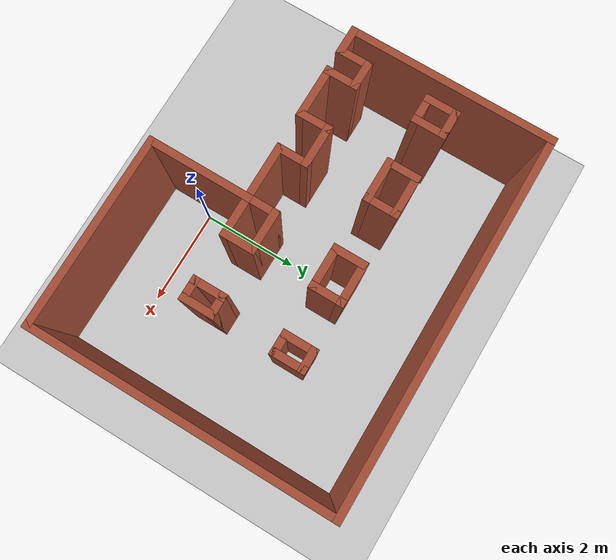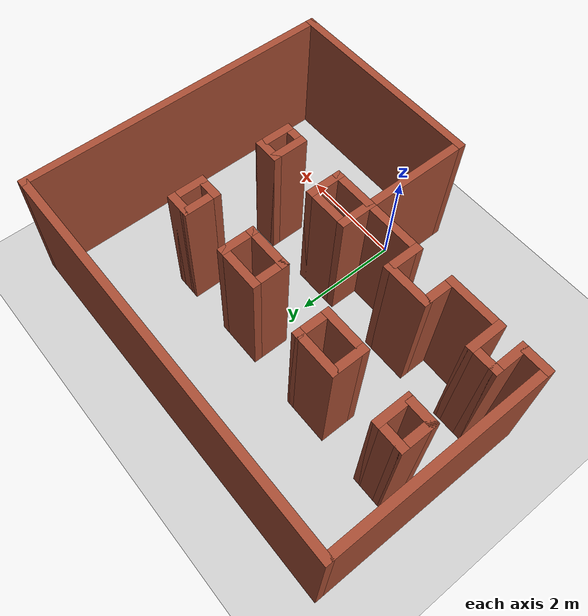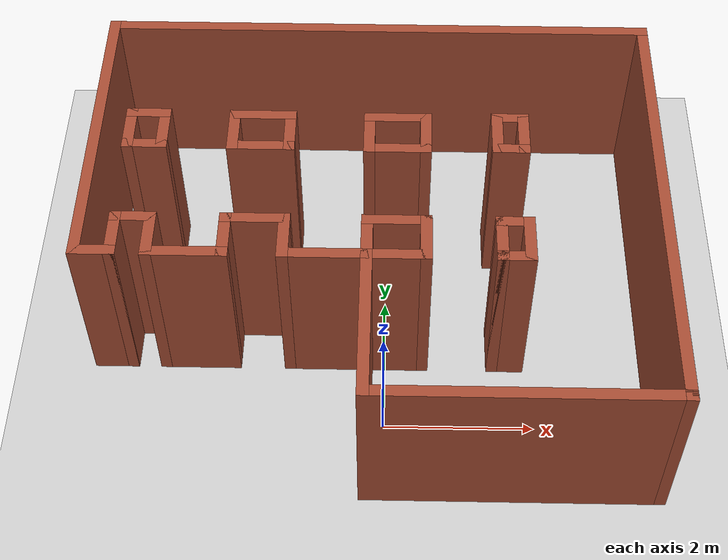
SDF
<sdf version="1.7">
 <world name="default">
  <light name="sun" type="directional">
   <pose>0 0 10 0 -0 0</pose>
   <diffuse>0.8 0.8 0.8 1</diffuse>
   <specular>0.2 0.2 0.2 1</specular>
   <attenuation>
    <range>1000</range>
    <constant>0.9</constant>
    <linear>0.01</linear>
    <quadratic>0.001</quadratic>
   </attenuation>
   <direction>-0.5 0.1 -0.9</direction>
   <spot><inner_angle>0</inner_angle><outer_angle>0</outer_angle><falloff>0</falloff></spot>
  </light>
  <model name="ground_plane">
   <static>1</static>
   <link name="link">
    <collision name="collision">
     <geometry><plane><normal>0 0 1</normal><size>100 100</size></plane></geometry>
     <surface>
      <contact><collide_bitmask>65535</collide_bitmask></contact>
      <friction><ode><mu>100</mu><mu2>50</mu2></ode></friction>
     </surface>
    </collision>
    <visual name="visual">
     <cast_shadows>0</cast_shadows>
     <geometry><plane><normal>0 0 1</normal><size>100 100</size></plane></geometry>
     <material>
      <script><uri>file://media/materials/scripts/gazebo.material</uri><name>Gazebo/Grey</name></script>
     </material>
    </visual>
   </link>
  </model>
  <gravity>0 0 -9.8</gravity>
  <magnetic_field>6e-06 2.3e-05 -4.2e-05</magnetic_field>
  <atmosphere type="adiabatic"/>
  <physics type="ode">
   <max_step_size>0.001</max_step_size>
   <real_time_factor>1</real_time_factor>
   <real_time_update_rate>1000</real_time_update_rate>
  </physics>
  <scene><ambient>0.4 0.4 0.4 1</ambient><background>0.7 0.7 0.7 1</background><shadows>1</shadows></scene>
  <spherical_coordinates>
   <surface_model>EARTH_WGS84</surface_model>
   <latitude_deg>0</latitude_deg>
   <longitude_deg>0</longitude_deg>
   <elevation>0</elevation>
   <heading_deg>0</heading_deg>
  </spherical_coordinates>
  <model name="real_lab">
   <pose>-0.156119 2.00596 0 0 -0 0</pose>
   <link name="Wall_1">
    <collision name="Wall_1_Collision">
     <geometry><box><size>6.2 0.15 2.5</size></box></geometry>
     <pose>0 0 1.25 0 -0 0</pose>
    </collision>
    <visual name="Wall_1_Visual">
     <pose>0 0 1.25 0 -0 0</pose>
     <geometry><box><size>6.2 0.15 2.5</size></box></geometry>
     <material>
      <script><uri>file://media/materials/scripts/gazebo.material</uri><name>Gazebo/Bricks</name></script>
      <ambient>1 1 1 1</ambient>
     </material>
     <meta><layer>0</layer></meta>
    </visual>
    <pose>3.725 0 0 0 -0 1.5708</pose>
   </link>
   <link name="Wall_100">
    <collision name="Wall_100_Collision">
     <geometry><box><size>7.6 0.15 2.5</size></box></geometry>
     <pose>0 0 1.25 0 -0 0</pose>
    </collision>
    <visual name="Wall_100_Visual">
     <pose>0 0 1.25 0 -0 0</pose>
     <geometry><box><size>7.6 0.15 2.5</size></box></geometry>
     <material>
      <script><uri>file://media/materials/scripts/gazebo.material</uri><name>Gazebo/Bricks</name></script>
      <ambient>1 1 1 1</ambient>
     </material>
     <meta><layer>0</layer></meta>
    </visual>
    <pose>-0 3.025 0 0 -0 3.14159</pose>
   </link>
   <link name="Wall_102">
    <collision name="Wall_102_Collision">
     <geometry><box><size>4.2 0.15 2.5</size></box></geometry>
     <pose>0 0 1.25 0 -0 0</pose>
    </collision>
    <visual name="Wall_102_Visual">
     <pose>0 0 1.25 0 -0 0</pose>
     <geometry><box><size>4.2 0.15 2.5</size></box></geometry>
     <material>
      <script><uri>file://media/materials/scripts/gazebo.material</uri><name>Gazebo/Bricks</name></script>
      <ambient>1 1 1 1</ambient>
     </material>
     <meta><layer>0</layer></meta>
    </visual>
    <pose>-3.725 1 0 0 -0 -1.5708</pose>
   </link>
   <link name="Wall_104">
    <collision name="Wall_104_Collision">
     <geometry><box><size>0.6 0.15 2.5</size></box></geometry>
     <pose>0 0 1.25 0 -0 0</pose>
    </collision>
    <visual name="Wall_104_Visual">
     <pose>0 0 1.25 0 -0 0</pose>
     <geometry><box><size>0.6 0.15 2.5</size></box></geometry>
     <material>
      <script><uri>file://media/materials/scripts/gazebo.material</uri><name>Gazebo/Bricks</name></script>
      <ambient>1 1 1 1</ambient>
     </material>
     <meta><layer>0</layer></meta>
    </visual>
    <pose>-3.5 -1.025 0 0 -0 0</pose>
   </link>
   <link name="Wall_106">
    <collision name="Wall_106_Collision">
     <geometry><box><size>0.7 0.15 2.5</size></box></geometry>
     <pose>0 0 1.25 0 -0 0</pose>
    </collision>
    <visual name="Wall_106_Visual">
     <pose>0 0 1.25 0 -0 0</pose>
     <geometry><box><size>0.7 0.15 2.5</size></box></geometry>
     <material>
      <script><uri>file://media/materials/scripts/gazebo.material</uri><name>Gazebo/Bricks</name></script>
      <ambient>1 1 1 1</ambient>
     </material>
     <meta><layer>0</layer></meta>
    </visual>
    <pose>-3.275 -0.75 0 0 -0 1.5708</pose>
   </link>
   <link name="Wall_108">
    <collision name="Wall_108_Collision">
     <geometry><box><size>0.6 0.15 2.5</size></box></geometry>
     <pose>0 0 1.25 0 -0 0</pose>
    </collision>
    <visual name="Wall_108_Visual">
     <pose>0 0 1.25 0 -0 0</pose>
     <geometry><box><size>0.6 0.15 2.5</size></box></geometry>
     <material>
      <script><uri>file://media/materials/scripts/gazebo.material</uri><name>Gazebo/Bricks</name></script>
      <ambient>1 1 1 1</ambient>
     </material>
     <meta><layer>0</layer></meta>
    </visual>
    <pose>-3.05 -0.475 0 0 -0 0</pose>
   </link>
   <link name="Wall_110">
    <collision name="Wall_110_Collision">
     <geometry><box><size>0.7 0.15 2.5</size></box></geometry>
     <pose>0 0 1.25 0 -0 0</pose>
    </collision>
    <visual name="Wall_110_Visual">
     <pose>0 0 1.25 0 -0 0</pose>
     <geometry><box><size>0.7 0.15 2.5</size></box></geometry>
     <material>
      <script><uri>file://media/materials/scripts/gazebo.material</uri><name>Gazebo/Bricks</name></script>
      <ambient>1 1 1 1</ambient>
     </material>
     <meta><layer>0</layer></meta>
    </visual>
    <pose>-2.825 -0.75 0 0 -0 -1.5708</pose>
   </link>
   <link name="Wall_120">
    <collision name="Wall_120_Collision">
     <geometry><box><size>0.7 0.15 2.5</size></box></geometry>
     <pose>0 0 1.25 0 -0 0</pose>
    </collision>
    <visual name="Wall_120_Visual">
     <pose>0 0 1.25 0 -0 0</pose>
     <geometry><box><size>0.7 0.15 2.5</size></box></geometry>
     <material>
      <script><uri>file://media/materials/scripts/gazebo.material</uri><name>Gazebo/Bricks</name></script>
      <ambient>1 1 1 1</ambient>
     </material>
     <meta><layer>0</layer></meta>
    </visual>
    <pose>-1.13679 1.03821 0 0 -0 -1.5708</pose>
   </link>
   <link name="Wall_122">
    <collision name="Wall_122_Collision">
     <geometry><box><size>0.9 0.15 2.5</size></box></geometry>
     <pose>0 0 1.25 0 -0 0</pose>
    </collision>
    <visual name="Wall_122_Visual">
     <pose>0 0 1.25 0 -0 0</pose>
     <geometry><box><size>0.9 0.15 2.5</size></box></geometry>
     <material>
      <script><uri>file://media/materials/scripts/gazebo.material</uri><name>Gazebo/Bricks</name></script>
      <ambient>1 1 1 1</ambient>
     </material>
     <meta><layer>0</layer></meta>
    </visual>
    <pose>-1.51179 0.763207 0 0 -0 0</pose>
   </link>
   <link name="Wall_151">
    <collision name="Wall_151_Collision">
     <geometry><box><size>0.7 0.15 2.5</size></box></geometry>
     <pose>0 0 1.25 0 -0 0</pose>
    </collision>
    <visual name="Wall_151_Visual">
     <pose>0 0 1.25 0 -0 0</pose>
     <geometry><box><size>0.7 0.15 2.5</size></box></geometry>
     <material>
      <script><uri>file://media/materials/scripts/gazebo.material</uri><name>Gazebo/Bricks</name></script>
      <ambient>1 1 1 1</ambient>
     </material>
     <meta><layer>0</layer></meta>
    </visual>
    <pose>1.62217 1.03821 0 0 -0 1.5708</pose>
   </link>
   <link name="Wall_154">
    <collision name="Wall_154_Collision">
     <geometry><box><size>0.7 0.15 2.5</size></box></geometry>
     <pose>0 0 1.25 0 -0 0</pose>
    </collision>
    <visual name="Wall_154_Visual">
     <pose>0 0 1.25 0 -0 0</pose>
     <geometry><box><size>0.7 0.15 2.5</size></box></geometry>
     <material>
      <script><uri>file://media/materials/scripts/gazebo.material</uri><name>Gazebo/Bricks</name></script>
      <ambient>1 1 1 1</ambient>
     </material>
     <meta><layer>0</layer></meta>
    </visual>
    <pose>1.97218 1.03821 0 0 -0 -1.5708</pose>
   </link>
   <link name="Wall_159">
    <collision name="Wall_159_Collision">
     <geometry><box><size>0.7 0.15 2.5</size></box></geometry>
     <pose>0 0 1.25 0 -0 0</pose>
    </collision>
    <visual name="Wall_159_Visual">
     <pose>0 0 1.25 0 -0 0</pose>
     <geometry><box><size>0.7 0.15 2.5</size></box></geometry>
     <material>
      <script><uri>file://media/materials/scripts/gazebo.material</uri><name>Gazebo/Bricks</name></script>
      <ambient>1 1 1 1</ambient>
     </material>
     <meta><layer>0</layer></meta>
    </visual>
    <pose>0.672175 1.02027 0 0 -0 1.5708</pose>
   </link>
   <link name="Wall_161">
    <collision name="Wall_161_Collision">
     <geometry><box><size>0.9 0.15 2.5</size></box></geometry>
     <pose>0 0 1.25 0 -0 0</pose>
    </collision>
    <visual name="Wall_161_Visual">
     <pose>0 0 1.25 0 -0 0</pose>
     <geometry><box><size>0.9 0.15 2.5</size></box></geometry>
     <material>
      <script><uri>file://media/materials/scripts/gazebo.material</uri><name>Gazebo/Bricks</name></script>
      <ambient>1 1 1 1</ambient>
     </material>
     <meta><layer>0</layer></meta>
    </visual>
    <pose>0.297175 1.29527 0 0 -0 3.14159</pose>
   </link>
   <link name="Wall_163">
    <collision name="Wall_163_Collision">
     <geometry><box><size>0.7 0.15 2.5</size></box></geometry>
     <pose>0 0 1.25 0 -0 0</pose>
    </collision>
    <visual name="Wall_163_Visual">
     <pose>0 0 1.25 0 -0 0</pose>
     <geometry><box><size>0.7 0.15 2.5</size></box></geometry>
     <material>
      <script><uri>file://media/materials/scripts/gazebo.material</uri><name>Gazebo/Bricks</name></script>
      <ambient>1 1 1 1</ambient>
     </material>
     <meta><layer>0</layer></meta>
    </visual>
    <pose>-0.077825 1.02027 0 0 -0 -1.5708</pose>
   </link>
   <link name="Wall_165">
    <collision name="Wall_165_Collision">
     <geometry><box><size>0.9 0.15 2.5</size></box></geometry>
     <pose>0 0 1.25 0 -0 0</pose>
    </collision>
    <visual name="Wall_165_Visual">
     <pose>0 0 1.25 0 -0 0</pose>
     <geometry><box><size>0.9 0.15 2.5</size></box></geometry>
     <material>
      <script><uri>file://media/materials/scripts/gazebo.material</uri><name>Gazebo/Bricks</name></script>
      <ambient>1 1 1 1</ambient>
     </material>
     <meta><layer>0</layer></meta>
    </visual>
    <pose>0.297175 0.745272 0 0 -0 0</pose>
   </link>
   <link name="Wall_171">
    <collision name="Wall_171_Collision">
     <geometry><box><size>0.5 0.15 2.5</size></box></geometry>
     <pose>0 0 1.25 0 -0 0</pose>
    </collision>
    <visual name="Wall_171_Visual">
     <pose>0 0 1.25 0 -0 0</pose>
     <geometry><box><size>0.5 0.15 2.5</size></box></geometry>
     <material>
      <script><uri>file://media/materials/scripts/gazebo.material</uri><name>Gazebo/Bricks</name></script>
      <ambient>1 1 1 1</ambient>
     </material>
     <meta><layer>0</layer></meta>
    </visual>
    <pose>1.79717 1.31321 0 0 -0 0</pose>
   </link>
   <link name="Wall_173">
    <collision name="Wall_173_Collision">
     <geometry><box><size>0.5 0.15 2.5</size></box></geometry>
     <pose>0 0 1.25 0 -0 0</pose>
    </collision>
    <visual name="Wall_173_Visual">
     <pose>0 0 1.25 0 -0 0</pose>
     <geometry><box><size>0.5 0.15 2.5</size></box></geometry>
     <material>
      <script><uri>file://media/materials/scripts/gazebo.material</uri><name>Gazebo/Bricks</name></script>
      <ambient>1 1 1 1</ambient>
     </material>
     <meta><layer>0</layer></meta>
    </visual>
    <pose>1.79717 0.763207 0 0 -0 0</pose>
   </link>
   <link name="Wall_175">
    <collision name="Wall_175_Collision">
     <geometry><box><size>0.7 0.15 2.5</size></box></geometry>
     <pose>0 0 1.25 0 -0 0</pose>
    </collision>
    <visual name="Wall_175_Visual">
     <pose>0 0 1.25 0 -0 0</pose>
     <geometry><box><size>0.7 0.15 2.5</size></box></geometry>
     <material>
      <script><uri>file://media/materials/scripts/gazebo.material</uri><name>Gazebo/Bricks</name></script>
      <ambient>1 1 1 1</ambient>
     </material>
     <meta><layer>0</layer></meta>
    </visual>
    <pose>1.625 -0.75 0 0 -0 -1.5708</pose>
   </link>
   <link name="Wall_179">
    <collision name="Wall_179_Collision">
     <geometry><box><size>0.5 0.15 2.5</size></box></geometry>
     <pose>0 0 1.25 0 -0 0</pose>
    </collision>
    <visual name="Wall_179_Visual">
     <pose>0 0 1.25 0 -0 0</pose>
     <geometry><box><size>0.5 0.15 2.5</size></box></geometry>
     <material>
      <script><uri>file://media/materials/scripts/gazebo.material</uri><name>Gazebo/Bricks</name></script>
      <ambient>1 1 1 1</ambient>
     </material>
     <meta><layer>0</layer></meta>
    </visual>
    <pose>1.8 -1.025 0 0 -0 0</pose>
   </link>
   <link name="Wall_180">
    <collision name="Wall_180_Collision">
     <geometry><box><size>0.7 0.15 2.5</size></box></geometry>
     <pose>0 0 1.25 0 -0 0</pose>
    </collision>
    <visual name="Wall_180_Visual">
     <pose>0 0 1.25 0 -0 0</pose>
     <geometry><box><size>0.7 0.15 2.5</size></box></geometry>
     <material>
      <script><uri>file://media/materials/scripts/gazebo.material</uri><name>Gazebo/Bricks</name></script>
      <ambient>1 1 1 1</ambient>
     </material>
     <meta><layer>0</layer></meta>
    </visual>
    <pose>1.975 -0.75 0 0 -0 1.5708</pose>
   </link>
   <link name="Wall_182">
    <collision name="Wall_182_Collision">
     <geometry><box><size>0.5 0.15 2.5</size></box></geometry>
     <pose>0 0 1.25 0 -0 0</pose>
    </collision>
    <visual name="Wall_182_Visual">
     <pose>0 0 1.25 0 -0 0</pose>
     <geometry><box><size>0.5 0.15 2.5</size></box></geometry>
     <material>
      <script><uri>file://media/materials/scripts/gazebo.material</uri><name>Gazebo/Bricks</name></script>
      <ambient>1 1 1 1</ambient>
     </material>
     <meta><layer>0</layer></meta>
    </visual>
    <pose>1.8 -0.475 0 0 -0 0</pose>
   </link>
   <link name="Wall_31">
    <collision name="Wall_31_Collision">
     <geometry><box><size>3.95 0.15 2.5</size></box></geometry>
     <pose>0 0 1.25 0 -0 0</pose>
    </collision>
    <visual name="Wall_31_Visual">
     <pose>0 0 1.25 0 -0 0</pose>
     <geometry><box><size>3.95 0.15 2.5</size></box></geometry>
     <material>
      <script><uri>file://media/materials/scripts/gazebo.material</uri><name>Gazebo/Bricks</name></script>
      <ambient>1 1 1 1</ambient>
     </material>
     <meta><layer>0</layer></meta>
    </visual>
    <pose>1.825 -3.025 0 0 -0 -3.14159</pose>
   </link>
   <link name="Wall_35">
    <collision name="Wall_35_Collision">
     <geometry><box><size>0.9 0.15 2.5</size></box></geometry>
     <pose>0 0 1.25 0 -0 0</pose>
    </collision>
    <visual name="Wall_35_Visual">
     <pose>0 0 1.25 0 -0 0</pose>
     <geometry><box><size>0.9 0.15 2.5</size></box></geometry>
     <material>
      <script><uri>file://media/materials/scripts/gazebo.material</uri><name>Gazebo/Bricks</name></script>
      <ambient>1 1 1 1</ambient>
     </material>
     <meta><layer>0</layer></meta>
    </visual>
    <pose>0.3 -0.475 0 0 -0 0</pose>
   </link>
   <link name="Wall_37">
    <collision name="Wall_37_Collision">
     <geometry><box><size>0.7 0.15 2.5</size></box></geometry>
     <pose>0 0 1.25 0 -0 0</pose>
    </collision>
    <visual name="Wall_37_Visual">
     <pose>0 0 1.25 0 -0 0</pose>
     <geometry><box><size>0.7 0.15 2.5</size></box></geometry>
     <material>
      <script><uri>file://media/materials/scripts/gazebo.material</uri><name>Gazebo/Bricks</name></script>
      <ambient>1 1 1 1</ambient>
     </material>
     <meta><layer>0</layer></meta>
    </visual>
    <pose>0.675 -0.75 0 0 -0 -1.5708</pose>
   </link>
   <link name="Wall_62">
    <collision name="Wall_62_Collision">
     <geometry><box><size>0.7 0.15 2.5</size></box></geometry>
     <pose>0 0 1.25 0 -0 0</pose>
    </collision>
    <visual name="Wall_62_Visual">
     <pose>0 0 1.25 0 -0 0</pose>
     <geometry><box><size>0.7 0.15 2.5</size></box></geometry>
     <material>
      <script><uri>file://media/materials/scripts/gazebo.material</uri><name>Gazebo/Bricks</name></script>
      <ambient>1 1 1 1</ambient>
     </material>
     <meta><layer>0</layer></meta>
    </visual>
    <pose>-3.275 1.05 0 0 -0 1.5708</pose>
   </link>
   <link name="Wall_64">
    <collision name="Wall_64_Collision">
     <geometry><box><size>0.6 0.15 2.5</size></box></geometry>
     <pose>0 0 1.25 0 -0 0</pose>
    </collision>
    <visual name="Wall_64_Visual">
     <pose>0 0 1.25 0 -0 0</pose>
     <geometry><box><size>0.6 0.15 2.5</size></box></geometry>
     <material>
      <script><uri>file://media/materials/scripts/gazebo.material</uri><name>Gazebo/Bricks</name></script>
      <ambient>1 1 1 1</ambient>
     </material>
     <meta><layer>0</layer></meta>
    </visual>
    <pose>-3.05 1.325 0 0 -0 0</pose>
   </link>
   <link name="Wall_66">
    <collision name="Wall_66_Collision">
     <geometry><box><size>0.7 0.15 2.5</size></box></geometry>
     <pose>0 0 1.25 0 -0 0</pose>
    </collision>
    <visual name="Wall_66_Visual">
     <pose>0 0 1.25 0 -0 0</pose>
     <geometry><box><size>0.7 0.15 2.5</size></box></geometry>
     <material>
      <script><uri>file://media/materials/scripts/gazebo.material</uri><name>Gazebo/Bricks</name></script>
      <ambient>1 1 1 1</ambient>
     </material>
     <meta><layer>0</layer></meta>
    </visual>
    <pose>-2.825 1.05 0 0 -0 -1.5708</pose>
   </link>
   <link name="Wall_68">
    <collision name="Wall_68_Collision">
     <geometry><box><size>0.6 0.15 2.5</size></box></geometry>
     <pose>0 0 1.25 0 -0 0</pose>
    </collision>
    <visual name="Wall_68_Visual">
     <pose>0 0 1.25 0 -0 0</pose>
     <geometry><box><size>0.6 0.15 2.5</size></box></geometry>
     <material>
      <script><uri>file://media/materials/scripts/gazebo.material</uri><name>Gazebo/Bricks</name></script>
      <ambient>1 1 1 1</ambient>
     </material>
     <meta><layer>0</layer></meta>
    </visual>
    <pose>-3.05 0.775 0 0 -0 3.14159</pose>
   </link>
   <link name="Wall_72">
    <collision name="Wall_72_Collision">
     <geometry><box><size>0.7 0.15 2.5</size></box></geometry>
     <pose>0 0 1.25 0 -0 0</pose>
    </collision>
    <visual name="Wall_72_Visual">
     <pose>0 0 1.25 0 -0 0</pose>
     <geometry><box><size>0.7 0.15 2.5</size></box></geometry>
     <material>
      <script><uri>file://media/materials/scripts/gazebo.material</uri><name>Gazebo/Bricks</name></script>
      <ambient>1 1 1 1</ambient>
     </material>
     <meta><layer>0</layer></meta>
    </visual>
    <pose>-1.88679 1.03821 0 0 -0 1.5708</pose>
   </link>
   <link name="Wall_74">
    <collision name="Wall_74_Collision">
     <geometry><box><size>0.9 0.15 2.5</size></box></geometry>
     <pose>0 0 1.25 0 -0 0</pose>
    </collision>
    <visual name="Wall_74_Visual">
     <pose>0 0 1.25 0 -0 0</pose>
     <geometry><box><size>0.9 0.15 2.5</size></box></geometry>
     <material>
      <script><uri>file://media/materials/scripts/gazebo.material</uri><name>Gazebo/Bricks</name></script>
      <ambient>1 1 1 1</ambient>
     </material>
     <meta><layer>0</layer></meta>
    </visual>
    <pose>-1.51179 1.31321 0 0 -0 0</pose>
   </link>
   <link name="Wall_78">
    <collision name="Wall_78_Collision">
     <geometry><box><size>2.15 0.15 2.5</size></box></geometry>
     <pose>0 0 1.25 0 -0 0</pose>
    </collision>
    <visual name="Wall_78_Visual">
     <pose>0 0 1.25 0 -0 0</pose>
     <geometry><box><size>2.15 0.15 2.5</size></box></geometry>
     <material>
      <script><uri>file://media/materials/scripts/gazebo.material</uri><name>Gazebo/Bricks</name></script>
      <ambient>1 1 1 1</ambient>
     </material>
     <meta><layer>0</layer></meta>
    </visual>
    <pose>-0.075 -2.025 0 0 -0 1.5708</pose>
   </link>
   <link name="Wall_80">
    <collision name="Wall_80_Collision">
     <geometry><box><size>0.9 0.15 2.5</size></box></geometry>
     <pose>0 0 1.25 0 -0 0</pose>
    </collision>
    <visual name="Wall_80_Visual">
     <pose>0 0 1.25 0 -0 0</pose>
     <geometry><box><size>0.9 0.15 2.5</size></box></geometry>
     <material>
      <script><uri>file://media/materials/scripts/gazebo.material</uri><name>Gazebo/Bricks</name></script>
      <ambient>1 1 1 1</ambient>
     </material>
     <meta><layer>0</layer></meta>
    </visual>
    <pose>0.3 -1.025 0 0 -0 -3.14159</pose>
   </link>
   <link name="Wall_82">
    <collision name="Wall_82_Collision">
     <geometry><box><size>0.7 0.15 2.5</size></box></geometry>
     <pose>0 0 1.25 0 -0 0</pose>
    </collision>
    <visual name="Wall_82_Visual">
     <pose>0 0 1.25 0 -0 0</pose>
     <geometry><box><size>0.7 0.15 2.5</size></box></geometry>
     <material>
      <script><uri>file://media/materials/scripts/gazebo.material</uri><name>Gazebo/Bricks</name></script>
      <ambient>1 1 1 1</ambient>
     </material>
     <meta><layer>0</layer></meta>
    </visual>
    <pose>-0.075 -0.75 0 0 -0 1.5708</pose>
   </link>
   <link name="Wall_86">
    <collision name="Wall_86_Collision">
     <geometry><box><size>1.2 0.15 2.5</size></box></geometry>
     <pose>0 0 1.25 0 -0 0</pose>
    </collision>
    <visual name="Wall_86_Visual">
     <pose>0 0 1.25 0 -0 0</pose>
     <geometry><box><size>1.2 0.15 2.5</size></box></geometry>
     <material>
      <script><uri>file://media/materials/scripts/gazebo.material</uri><name>Gazebo/Bricks</name></script>
      <ambient>1 1 1 1</ambient>
     </material>
     <meta><layer>0</layer></meta>
    </visual>
    <pose>-0.6 -1.025 0 0 -0 3.14159</pose>
   </link>
   <link name="Wall_88">
    <collision name="Wall_88_Collision">
     <geometry><box><size>0.7 0.15 2.5</size></box></geometry>
     <pose>0 0 1.25 0 -0 0</pose>
    </collision>
    <visual name="Wall_88_Visual">
     <pose>0 0 1.25 0 -0 0</pose>
     <geometry><box><size>0.7 0.15 2.5</size></box></geometry>
     <material>
      <script><uri>file://media/materials/scripts/gazebo.material</uri><name>Gazebo/Bricks</name></script>
      <ambient>1 1 1 1</ambient>
     </material>
     <meta><layer>0</layer></meta>
    </visual>
    <pose>-1.125 -0.75 0 0 -0 1.5708</pose>
   </link>
   <link name="Wall_90">
    <collision name="Wall_90_Collision">
     <geometry><box><size>0.9 0.15 2.5</size></box></geometry>
     <pose>0 0 1.25 0 -0 0</pose>
    </collision>
    <visual name="Wall_90_Visual">
     <pose>0 0 1.25 0 -0 0</pose>
     <geometry><box><size>0.9 0.15 2.5</size></box></geometry>
     <material>
      <script><uri>file://media/materials/scripts/gazebo.material</uri><name>Gazebo/Bricks</name></script>
      <ambient>1 1 1 1</ambient>
     </material>
     <meta><layer>0</layer></meta>
    </visual>
    <pose>-1.5 -0.475 0 0 -0 3.14159</pose>
   </link>
   <link name="Wall_92">
    <collision name="Wall_92_Collision">
     <geometry><box><size>0.7 0.15 2.5</size></box></geometry>
     <pose>0 0 1.25 0 -0 0</pose>
    </collision>
    <visual name="Wall_92_Visual">
     <pose>0 0 1.25 0 -0 0</pose>
     <geometry><box><size>0.7 0.15 2.5</size></box></geometry>
     <material>
      <script><uri>file://media/materials/scripts/gazebo.material</uri><name>Gazebo/Bricks</name></script>
      <ambient>1 1 1 1</ambient>
     </material>
     <meta><layer>0</layer></meta>
    </visual>
    <pose>-1.875 -0.75 0 0 -0 -1.5708</pose>
   </link>
   <link name="Wall_97">
    <collision name="Wall_97_Collision">
     <geometry><box><size>1.1 0.15 2.5</size></box></geometry>
     <pose>0 0 1.25 0 -0 0</pose>
    </collision>
    <visual name="Wall_97_Visual">
     <pose>0 0 1.25 0 -0 0</pose>
     <geometry><box><size>1.1 0.15 2.5</size></box></geometry>
     <material>
      <script><uri>file://media/materials/scripts/gazebo.material</uri><name>Gazebo/Bricks</name></script>
      <ambient>1 1 1 1</ambient>
     </material>
     <meta><layer>0</layer></meta>
    </visual>
    <pose>-2.35 -1.025 0 0 -0 3.14159</pose>
   </link>
   <static>1</static>
  </model>
 </world>
</sdf>
